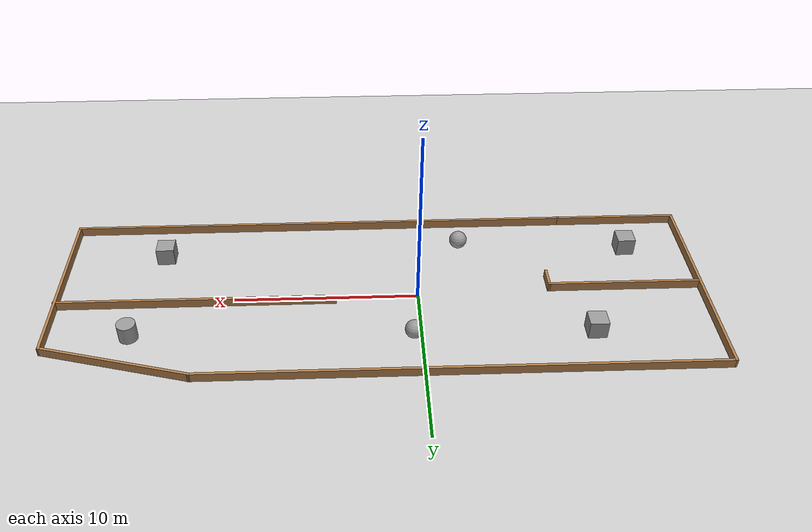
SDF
<sdf version="1.7">
 <world name="default">
  <light name="sun" type="directional">
   <pose>0 0 10 0 -0 0</pose>
   <diffuse>0.8 0.8 0.8 1</diffuse>
   <specular>0.2 0.2 0.2 1</specular>
   <attenuation>
    <range>1000</range>
    <constant>0.9</constant>
    <linear>0.01</linear>
    <quadratic>0.001</quadratic>
   </attenuation>
   <direction>-0.5 0.1 -0.9</direction>
   <spot><inner_angle>0</inner_angle><outer_angle>0</outer_angle><falloff>0</falloff></spot>
  </light>
  <model name="ground_plane">
   <static>1</static>
   <link name="link">
    <collision name="collision">
     <geometry><plane><normal>0 0 1</normal><size>100 100</size></plane></geometry>
     <surface>
      <contact><collide_bitmask>65535</collide_bitmask></contact>
      <friction><ode><mu>100</mu><mu2>50</mu2></ode></friction>
     </surface>
    </collision>
    <visual name="visual">
     <cast_shadows>0</cast_shadows>
     <geometry><plane><normal>0 0 1</normal><size>100 100</size></plane></geometry>
     <material>
      <script><uri>file://media/materials/scripts/gazebo.material</uri><name>Gazebo/Grey</name></script>
     </material>
    </visual>
   </link>
  </model>
  <gravity>0 0 -9.8</gravity>
  <magnetic_field>6e-06 2.3e-05 -4.2e-05</magnetic_field>
  <atmosphere type="adiabatic"/>
  <physics type="ode">
   <max_step_size>0.001</max_step_size>
   <real_time_factor>1</real_time_factor>
   <real_time_update_rate>1000</real_time_update_rate>
  </physics>
  <scene><ambient>0.4 0.4 0.4 1</ambient><background>0.7 0.7 0.7 1</background><shadows>1</shadows></scene>
  <spherical_coordinates>
   <surface_model>EARTH_WGS84</surface_model>
   <latitude_deg>0</latitude_deg>
   <longitude_deg>0</longitude_deg>
   <elevation>0</elevation>
   <heading_deg>0</heading_deg>
  </spherical_coordinates>
  <model name="final_world.world">
   <pose>1.9928 -0.17666 0 0 -0 0</pose>
   <link name="Wall_12">
    <collision name="Wall_12_Collision">
     <geometry><box><size>28.5261 0.15 0.5</size></box></geometry>
     <pose>0 0 0.25 0 -0 0</pose>
    </collision>
    <visual name="Wall_12_Visual">
     <pose>0 0 0.25 0 -0 0</pose>
     <geometry><box><size>28.5261 0.15 0.5</size></box></geometry>
     <material>
      <script><uri>file://media/materials/scripts/gazebo.material</uri><name>Gazebo/Wood</name></script>
      <ambient>1 1 1 1</ambient>
     </material>
     <meta><layer>0</layer></meta>
    </visual>
    <pose>3.40393 -6.10672 0 0 -0 -3.14018</pose>
   </link>
   <link name="Wall_17">
    <collision name="Wall_17_Collision">
     <geometry><box><size>15.25 0.15 0.5</size></box></geometry>
     <pose>0 0 0.25 0 -0 0</pose>
    </collision>
    <visual name="Wall_17_Visual">
     <pose>0 0 0.25 0 -0 0</pose>
     <geometry><box><size>15.25 0.15 0.5</size></box></geometry>
     <material>
      <script><uri>file://media/materials/scripts/gazebo.material</uri><name>Gazebo/Wood</name></script>
      <ambient>1 1 1 1</ambient>
     </material>
     <meta><layer>0</layer></meta>
    </visual>
    <pose>10.0843 0.527378 0 0 -0 3.14159</pose>
   </link>
   <link name="Wall_20">
    <collision name="Wall_20_Collision">
     <geometry><box><size>7 0.15 0.5</size></box></geometry>
     <pose>0 0 0.25 0 -0 0</pose>
    </collision>
    <visual name="Wall_20_Visual">
     <pose>0 0 0.25 0 -0 0</pose>
     <geometry><box><size>7 0.15 0.5</size></box></geometry>
     <material>
      <script><uri>file://media/materials/scripts/gazebo.material</uri><name>Gazebo/Wood</name></script>
      <ambient>1 1 1 1</ambient>
     </material>
     <meta><layer>0</layer></meta>
    </visual>
    <pose>-14.2091 -6.12672 0 0 -0 3.14159</pose>
   </link>
   <link name="Wall_21">
    <collision name="Wall_21_Collision">
     <geometry><box><size>12.3873 0.15 0.5</size></box></geometry>
     <pose>0 0 0.25 0 -0 0</pose>
    </collision>
    <visual name="Wall_21_Visual">
     <pose>0 0 0.25 0 -0 0</pose>
     <geometry><box><size>12.3873 0.15 0.5</size></box></geometry>
     <material>
      <script><uri>file://media/materials/scripts/gazebo.material</uri><name>Gazebo/Wood</name></script>
      <ambient>1 1 1 1</ambient>
     </material>
     <meta><layer>0</layer></meta>
    </visual>
    <pose>-17.608 -0.008222 0 0 -0 1.56655</pose>
   </link>
   <link name="Wall_23">
    <collision name="Wall_23_Collision">
     <geometry><box><size>8.41886 0.15 0.5</size></box></geometry>
     <pose>0 0 0.25 0 -0 0</pose>
    </collision>
    <visual name="Wall_23_Visual">
     <pose>0 0 0.25 0 -0 0</pose>
     <geometry><box><size>8.41886 0.15 0.5</size></box></geometry>
     <material>
      <script><uri>file://media/materials/scripts/gazebo.material</uri><name>Gazebo/Wood</name></script>
      <ambient>1 1 1 1</ambient>
     </material>
     <meta><layer>0</layer></meta>
    </visual>
    <pose>-13.3665 -0.079722 0 0 -0 0</pose>
   </link>
   <link name="Wall_24">
    <collision name="Wall_24_Collision">
     <geometry><box><size>1.25 0.15 0.5</size></box></geometry>
     <pose>0 0 0.25 0 -0 0</pose>
    </collision>
    <visual name="Wall_24_Visual">
     <pose>0 0 0.25 0 -0 0</pose>
     <geometry><box><size>1.25 0.15 0.5</size></box></geometry>
     <material>
      <script><uri>file://media/materials/scripts/gazebo.material</uri><name>Gazebo/Wood</name></script>
      <ambient>1 1 1 1</ambient>
     </material>
     <meta><layer>0</layer></meta>
    </visual>
    <pose>-9.23202 -0.629722 0 0 -0 -1.5708</pose>
   </link>
   <link name="Wall_7">
    <collision name="Wall_7_Collision">
     <geometry><box><size>27.5 0.15 0.5</size></box></geometry>
     <pose>0 0 0.25 0 -0 0</pose>
    </collision>
    <visual name="Wall_7_Visual">
     <pose>0 0 0.25 0 -0 0</pose>
     <geometry><box><size>27.5 0.15 0.5</size></box></geometry>
     <material>
      <script><uri>file://media/materials/scripts/gazebo.material</uri><name>Gazebo/Wood</name></script>
      <ambient>1 1 1 1</ambient>
     </material>
     <meta><layer>0</layer></meta>
    </visual>
    <pose>-3.90752 6.11028 0 0 -0 0</pose>
   </link>
   <link name="Wall_8">
    <collision name="Wall_8_Collision">
     <geometry><box><size>8.25121 0.15 0.5</size></box></geometry>
     <pose>0 0 0.25 0 -0 0</pose>
    </collision>
    <visual name="Wall_8_Visual">
     <pose>0 0 0.25 0 -0 0</pose>
     <geometry><box><size>8.25121 0.15 0.5</size></box></geometry>
     <material>
      <script><uri>file://media/materials/scripts/gazebo.material</uri><name>Gazebo/Wood</name></script>
      <ambient>1 1 1 1</ambient>
     </material>
     <meta><layer>0</layer></meta>
    </visual>
    <pose>13.6795 5.06178 0 0 -0 -0.261835</pose>
   </link>
   <link name="Wall_9">
    <collision name="Wall_9_Collision">
     <geometry><box><size>10.25 0.15 0.5</size></box></geometry>
     <pose>0 0 0.25 0 -0 0</pose>
    </collision>
    <visual name="Wall_9_Visual">
     <pose>0 0 0.25 0 -0 0</pose>
     <geometry><box><size>10.25 0.15 0.5</size></box></geometry>
     <material>
      <script><uri>file://media/materials/scripts/gazebo.material</uri><name>Gazebo/Wood</name></script>
      <ambient>1 1 1 1</ambient>
     </material>
     <meta><layer>0</layer></meta>
    </visual>
    <pose>17.592 -1.03672 0 0 -0 -1.5708</pose>
   </link>
   <static>1</static>
  </model>
  <model name="unit_box">
   <pose>14.1458 -3.77691 0.499995 -1e-05 -0 -0</pose>
   <link name="link">
    <inertial>
     <mass>1</mass>
     <inertia>
      <ixx>0.166667</ixx>
      <ixy>0</ixy>
      <ixz>0</ixz>
      <iyy>0.166667</iyy>
      <iyz>0</iyz>
      <izz>0.166667</izz>
     </inertia>
    </inertial>
    <collision name="collision"><geometry><box><size>1 1 1</size></box></geometry></collision>
    <visual name="visual">
     <geometry><box><size>1 1 1</size></box></geometry>
     <material>
      <script><name>Gazebo/Grey</name><uri>file://media/materials/scripts/gazebo.material</uri></script>
     </material>
    </visual>
   </link>
  </model>
  <model name="unit_box_0">
   <pose>-9.1379 3.13949 0.499995 0 1e-05 0</pose>
   <link name="link">
    <inertial>
     <mass>1</mass>
     <inertia>
      <ixx>0.166667</ixx>
      <ixy>0</ixy>
      <ixz>0</ixz>
      <iyy>0.166667</iyy>
      <iyz>0</iyz>
      <izz>0.166667</izz>
     </inertia>
    </inertial>
    <collision name="collision"><geometry><box><size>1 1 1</size></box></geometry></collision>
    <visual name="visual">
     <geometry><box><size>1 1 1</size></box></geometry>
     <material>
      <script><name>Gazebo/Grey</name><uri>file://media/materials/scripts/gazebo.material</uri></script>
     </material>
    </visual>
   </link>
  </model>
  <model name="unit_cylinder">
   <pose>15.2786 2.73539 0.499993 -3e-06 -3e-06 0</pose>
   <link name="link">
    <inertial>
     <mass>1</mass>
     <inertia><ixx>0.145833</ixx><ixy>0</ixy><ixz>0</ixz><iyy>0.145833</iyy><iyz>0</iyz><izz>0.125</izz></inertia>
    </inertial>
    <collision name="collision">
     <geometry><cylinder><radius>0.5</radius><length>1</length></cylinder></geometry>
    </collision>
    <visual name="visual">
     <geometry><cylinder><radius>0.5</radius><length>1</length></cylinder></geometry>
     <material>
      <script><name>Gazebo/Grey</name><uri>file://media/materials/scripts/gazebo.material</uri></script>
     </material>
    </visual>
   </link>
  </model>
  <model name="unit_sphere">
   <pose>0.393246 3.12661 0.5 0 -0 0</pose>
   <link name="link">
    <inertial>
     <mass>1</mass>
     <inertia><ixx>0.1</ixx><ixy>0</ixy><ixz>0</ixz><iyy>0.1</iyy><iyz>0</iyz><izz>0.1</izz></inertia>
    </inertial>
    <collision name="collision"><geometry><sphere><radius>0.5</radius></sphere></geometry></collision>
    <visual name="visual">
     <geometry><sphere><radius>0.5</radius></sphere></geometry>
     <material>
      <script><name>Gazebo/Grey</name><uri>file://media/materials/scripts/gazebo.material</uri></script>
     </material>
    </visual>
   </link>
  </model>
  <model name="unit_sphere_0">
   <pose>-2.60352 -4.35356 0.5 0 -0 0</pose>
   <link name="link">
    <inertial>
     <mass>1</mass>
     <inertia><ixx>0.1</ixx><ixy>0</ixy><ixz>0</ixz><iyy>0.1</iyy><iyz>0</iyz><izz>0.1</izz></inertia>
    </inertial>
    <collision name="collision"><geometry><sphere><radius>0.5</radius></sphere></geometry></collision>
    <visual name="visual">
     <geometry><sphere><radius>0.5</radius></sphere></geometry>
     <material>
      <script><name>Gazebo/Grey</name><uri>file://media/materials/scripts/gazebo.material</uri></script>
     </material>
    </visual>
   </link>
  </model>
  <model name="unit_box_1">
   <pose>-12.1792 -3.73078 0.5 0 -0 0</pose>
   <link name="link">
    <inertial>
     <mass>1</mass>
     <inertia>
      <ixx>0.166667</ixx>
      <ixy>0</ixy>
      <ixz>0</ixz>
      <iyy>0.166667</iyy>
      <iyz>0</iyz>
      <izz>0.166667</izz>
     </inertia>
    </inertial>
    <collision name="collision"><geometry><box><size>1 1 1</size></box></geometry></collision>
    <visual name="visual">
     <geometry><box><size>1 1 1</size></box></geometry>
     <material>
      <script><name>Gazebo/Grey</name><uri>file://media/materials/scripts/gazebo.material</uri></script>
     </material>
    </visual>
   </link>
  </model>
 </world>
</sdf>
